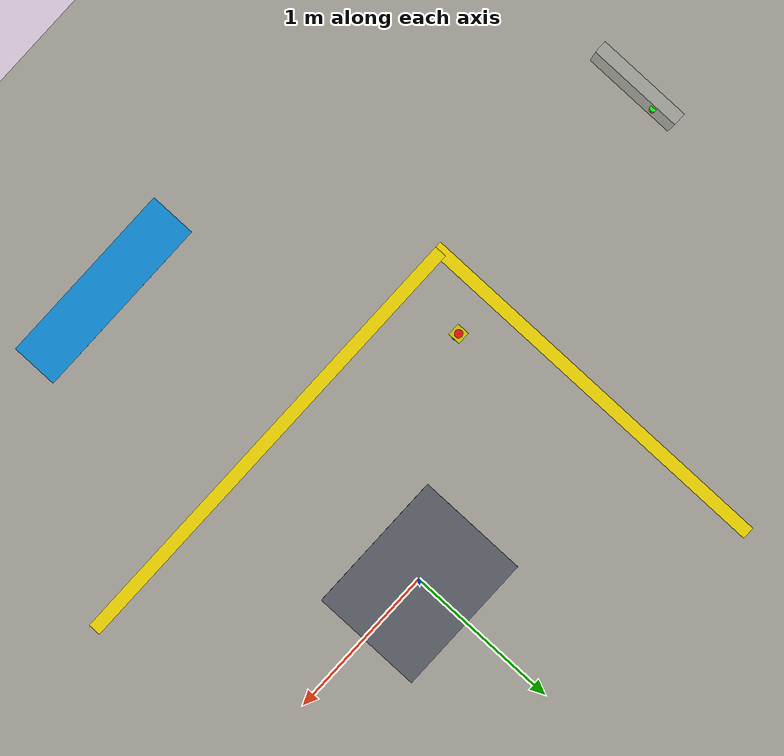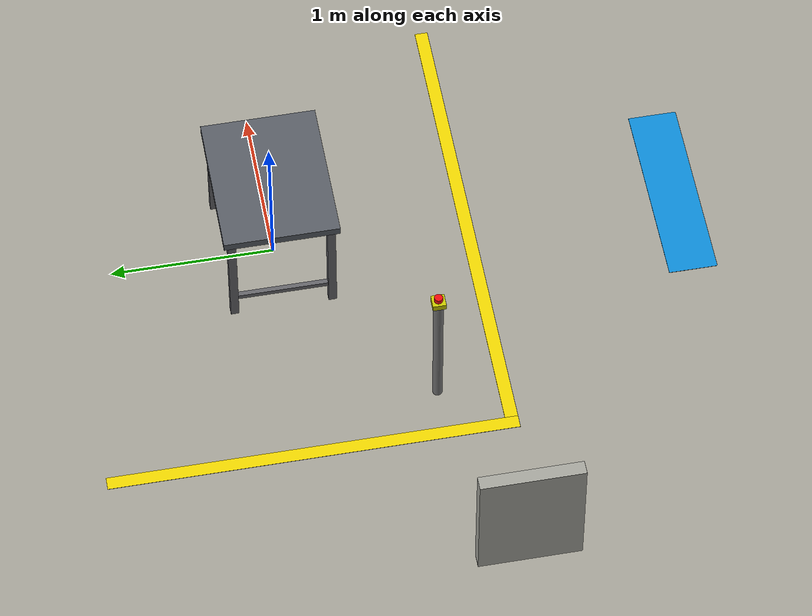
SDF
<sdf version="1.9">
 <world name="panda_factory">
  <model name="factory_floor">
   <static>true</static>
   <link name="floor_link">
    <collision name="floor_collision">
     <geometry><plane><normal>0 0 1</normal><size>20 20</size></plane></geometry>
    </collision>
    <visual name="floor_visual">
     <geometry><plane><normal>0 0 1</normal><size>20 20</size></plane></geometry>
     <material>
      <ambient>0.55 0.55 0.52 1</ambient>
      <diffuse>0.65 0.64 0.60 1</diffuse>
      <specular>0.15 0.15 0.15 1</specular>
     </material>
    </visual>
   </link>
  </model>
  <model name="safety_line_back">
   <static>true</static>
   <pose>0 -1.2 0.001 0 0 0</pose>
   <link name="line_link">
    <visual name="line_visual">
     <geometry><box><size>3.0 0.08 0.002</size></box></geometry>
     <material>
      <ambient>0.85 0.75 0.0 1</ambient>
      <diffuse>0.95 0.85 0.0 1</diffuse>
      <specular>0.3 0.3 0.0 1</specular>
      <emissive>0.1 0.09 0.0 1</emissive>
     </material>
    </visual>
   </link>
  </model>
  <model name="safety_line_left">
   <static>true</static>
   <pose>-1.5 0 0.001 0 0 0</pose>
   <link name="line_link">
    <visual name="line_visual">
     <geometry><box><size>0.08 2.48 0.002</size></box></geometry>
     <material>
      <ambient>0.85 0.75 0.0 1</ambient>
      <diffuse>0.95 0.85 0.0 1</diffuse>
      <specular>0.3 0.3 0.0 1</specular>
      <emissive>0.1 0.09 0.0 1</emissive>
     </material>
    </visual>
   </link>
  </model>
  <model name="work_table">
   <static>true</static>
   <link name="table_top">
    <pose>0 0 0.725 0 0 0</pose>
    <collision name="top_collision"><geometry><box><size>0.9 0.7 0.05</size></box></geometry></collision>
    <visual name="top_visual">
     <geometry><box><size>0.9 0.7 0.05</size></box></geometry>
     <material>
      <ambient>0.25 0.27 0.30 1</ambient>
      <diffuse>0.35 0.37 0.40 1</diffuse>
      <specular>0.6 0.6 0.6 1</specular>
     </material>
    </visual>
   </link>
   <link name="leg_fl">
    <pose>0.40 0.30 0.35 0 0 0</pose>
    <collision name="col"><geometry><box><size>0.05 0.05 0.70</size></box></geometry></collision>
    <visual name="vis">
     <geometry><box><size>0.05 0.05 0.70</size></box></geometry>
     <material>
      <ambient>0.3 0.3 0.32 1</ambient>
      <diffuse>0.4 0.4 0.42 1</diffuse>
      <specular>0.5 0.5 0.5 1</specular>
     </material>
    </visual>
   </link>
   <link name="leg_fr">
    <pose>0.40 -0.30 0.35 0 0 0</pose>
    <collision name="col"><geometry><box><size>0.05 0.05 0.70</size></box></geometry></collision>
    <visual name="vis">
     <geometry><box><size>0.05 0.05 0.70</size></box></geometry>
     <material>
      <ambient>0.3 0.3 0.32 1</ambient>
      <diffuse>0.4 0.4 0.42 1</diffuse>
      <specular>0.5 0.5 0.5 1</specular>
     </material>
    </visual>
   </link>
   <link name="leg_bl">
    <pose>-0.40 0.30 0.35 0 0 0</pose>
    <collision name="col"><geometry><box><size>0.05 0.05 0.70</size></box></geometry></collision>
    <visual name="vis">
     <geometry><box><size>0.05 0.05 0.70</size></box></geometry>
     <material>
      <ambient>0.3 0.3 0.32 1</ambient>
      <diffuse>0.4 0.4 0.42 1</diffuse>
      <specular>0.5 0.5 0.5 1</specular>
     </material>
    </visual>
   </link>
   <link name="leg_br">
    <pose>-0.40 -0.30 0.35 0 0 0</pose>
    <collision name="col"><geometry><box><size>0.05 0.05 0.70</size></box></geometry></collision>
    <visual name="vis">
     <geometry><box><size>0.05 0.05 0.70</size></box></geometry>
     <material>
      <ambient>0.3 0.3 0.32 1</ambient>
      <diffuse>0.4 0.4 0.42 1</diffuse>
      <specular>0.5 0.5 0.5 1</specular>
     </material>
    </visual>
   </link>
   <link name="brace_front">
    <pose>0.40 0 0.15 0 0 0</pose>
    <visual name="vis">
     <geometry><box><size>0.03 0.56 0.03</size></box></geometry>
     <material>
      <ambient>0.3 0.3 0.32 1</ambient>
      <diffuse>0.4 0.4 0.42 1</diffuse>
      <specular>0.5 0.5 0.5 1</specular>
     </material>
    </visual>
   </link>
   <link name="brace_back">
    <pose>-0.40 0 0.15 0 0 0</pose>
    <visual name="vis">
     <geometry><box><size>0.03 0.56 0.03</size></box></geometry>
     <material>
      <ambient>0.3 0.3 0.32 1</ambient>
      <diffuse>0.4 0.4 0.42 1</diffuse>
      <specular>0.5 0.5 0.5 1</specular>
     </material>
    </visual>
   </link>
  </model>
  <model name="control_panel">
   <static>true</static>
   <pose>-2.90 -1.0 1.2 0 0 0</pose>
   <link name="panel_body">
    <visual name="panel_vis">
     <geometry><box><size>0.08 0.6 0.8</size></box></geometry>
     <material>
      <ambient>0.5 0.5 0.48 1</ambient>
      <diffuse>0.65 0.65 0.62 1</diffuse>
      <specular>0.2 0.2 0.2 1</specular>
     </material>
    </visual>
   </link>
   <link name="status_light">
    <pose>0.045 0.15 0.25 0 0 0</pose>
    <visual name="light_vis">
     <geometry><cylinder><radius>0.02</radius><length>0.01</length></cylinder></geometry>
     <material>
      <ambient>0.0 0.8 0.0 1</ambient>
      <diffuse>0.1 0.95 0.1 1</diffuse>
      <specular>0.1 0.3 0.1 1</specular>
      <emissive>0.0 0.5 0.0 1</emissive>
     </material>
    </visual>
   </link>
   <link name="warning_light">
    <pose>0.045 0.15 0.15 0 0 0</pose>
    <visual name="light_vis">
     <geometry><cylinder><radius>0.02</radius><length>0.01</length></cylinder></geometry>
     <material>
      <ambient>0.8 0.5 0.0 1</ambient>
      <diffuse>0.95 0.65 0.1 1</diffuse>
      <specular>0.3 0.2 0.05 1</specular>
      <emissive>0.3 0.2 0.0 1</emissive>
     </material>
    </visual>
   </link>
  </model>
  <model name="estop_pedestal">
   <static>true</static>
   <pose>-1.2 -0.8 0 0 0 0</pose>
   <link name="post">
    <pose>0 0 0.45 0 0 0</pose>
    <visual name="vis">
     <geometry><cylinder><radius>0.03</radius><length>0.9</length></cylinder></geometry>
     <material>
      <ambient>0.3 0.3 0.3 1</ambient>
      <diffuse>0.45 0.45 0.45 1</diffuse>
      <specular>0.4 0.4 0.4 1</specular>
     </material>
    </visual>
   </link>
   <link name="housing">
    <pose>0 0 0.92 0 0 0</pose>
    <visual name="vis">
     <geometry><box><size>0.08 0.08 0.04</size></box></geometry>
     <material>
      <ambient>0.6 0.6 0.0 1</ambient>
      <diffuse>0.8 0.8 0.0 1</diffuse>
      <specular>0.3 0.3 0.0 1</specular>
     </material>
    </visual>
   </link>
   <link name="button">
    <pose>0 0 0.955 0 0 0</pose>
    <visual name="vis">
     <geometry><cylinder><radius>0.025</radius><length>0.03</length></cylinder></geometry>
     <material>
      <ambient>0.8 0.0 0.0 1</ambient>
      <diffuse>0.95 0.05 0.05 1</diffuse>
      <specular>0.4 0.1 0.1 1</specular>
      <emissive>0.15 0.0 0.0 1</emissive>
     </material>
    </visual>
   </link>
  </model>
  <model name="logo_decal">
   <static>true</static>
   <pose>0 -2.5 0.002 0 0 0</pose>
   <link name="decal_link">
    <visual name="decal_vis">
     <geometry><box><size>1.2 0.3 0.002</size></box></geometry>
     <material>
      <ambient>0.0 0.45 0.7 1</ambient>
      <diffuse>0.05 0.55 0.85 1</diffuse>
      <specular>0.1 0.1 0.1 1</specular>
     </material>
    </visual>
   </link>
  </model>
 </world>
</sdf>
